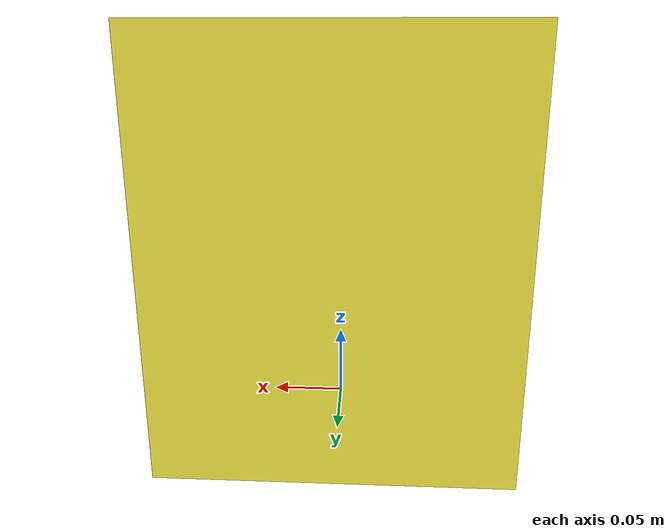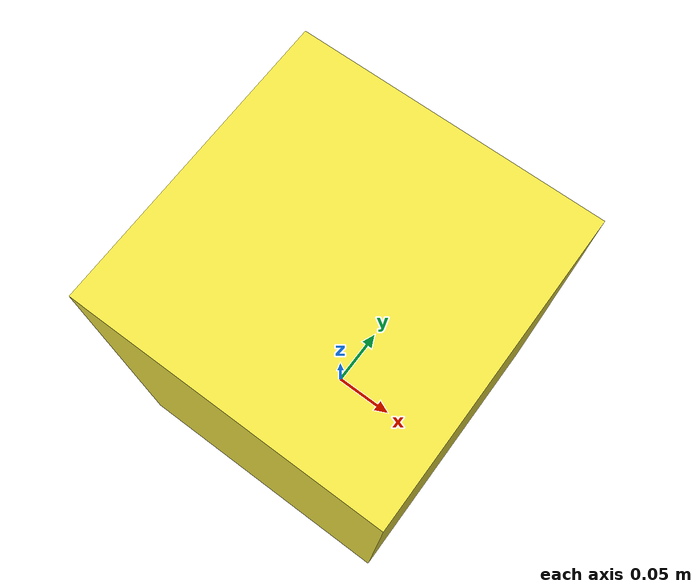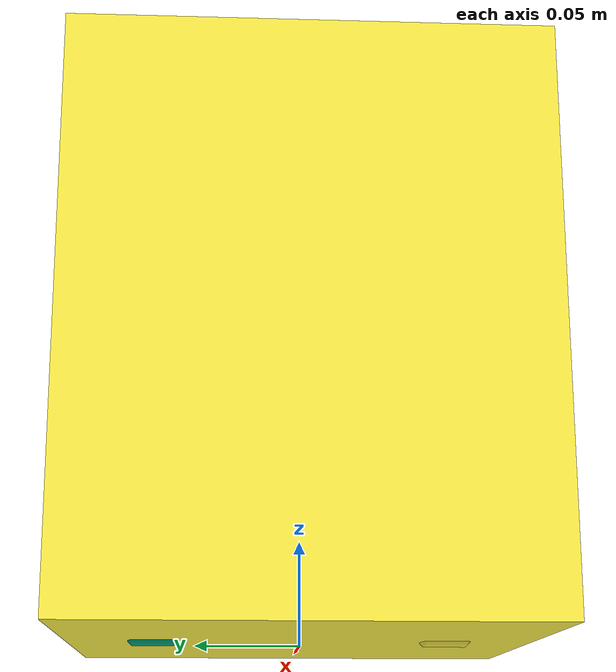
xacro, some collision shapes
<?xml version="1.0"?>
<robot name="cube_petit" xmlns:xacro="http://www.ros.org/wiki/xacro">
  <xacro:include filename="$(find cube_petit_description)/xacro/publish_pose.xacro"/>
  <xacro:include filename="$(find cube_petit_description)/xacro/brass_gazebo_battery.xacro"/>

  <link name="base_link"/>
  <joint name="body_joint" type="fixed">
    <parent link="base_link"/>
    <child link="body_link"/>
    <origin rpy="0 0 0" xyz="0 0 0"/>
  </joint>

  <link name="base_link_reverse"/>
  <joint name="base_link_reverse_joint" type="fixed">
    <parent link="base_link"/>
    <child link="base_link_reverse"/>
    <origin rpy="0 0 3.1415926" xyz="0 0 0"/>
  </joint>

  <link name="respeaker_base"/>
  <joint name="respeaker_joint" type="fixed">
    <parent link="base_link"/>
    <child link="respeaker_base"/>
    <origin rpy="0 0 0" xyz="0 0 0.28"/>
  </joint>

  <link name="body_link">
    <visual>
      <origin rpy="0 0 0" xyz="0 0 0"/>
      <geometry>
        <mesh
          filename="package://cube_petit_description/meshes/cube_petit/body/2/cube_petit_v2_body.obj"/>
      </geometry>
    </visual>
    <collision>
      <origin rpy="0 0 0" xyz="0 0 0.13725"/>
      <geometry>
        <box size="0.221 0.2225 0.2705"/>
      </geometry>
    </collision>
    <inertial>
      <origin rpy="0 0 0" xyz="0.00440023 0.00053314 0.15283194"/>
      <mass value="1.98239086"/>
      <inertia
        ixx="0.02351680"
        ixy="0.00001868" iyy="0.02505713"
        ixz="-0.00012952" iyz="-0.00004728" izz="0.02060399"/>
    </inertial>
  </link>
  <gazebo reference="body_link">
    <selfCollide>false</selfCollide>
    <maxContacts>4</maxContacts>
    <mu1 value="0.0"/>
    <kp value="150000"/>
    <kd value="0"/>
  </gazebo>

  <link name="connector_link"/>
  <joint name="connector_joint" type="fixed">
    <parent link="base_link"/>
    <child link="connector_link"/>
    <origin rpy="0 0 3.14" xyz="-0.11 0 0.025"/>
  </joint>

  <xacro:include filename="$(find cube_petit_description)/urdf/sensors/lidar.xacro" />

  <!-- rear camera -->
  <xacro:include filename="$(find cube_petit_description)/urdf/sensors/camera.xacro" />

  <xacro:include filename="$(find cube_petit_description)/urdf/sensors/depth.xacro" />

  <xacro:include filename="$(find cube_petit_description)/urdf/wheels/tamiya_wheels.xacro"/>

  <xacro:brass_gazebo_battery_plugin parent_link="base_link" voltage="15.12" capacity_ah="2.0"
    charge_current="100.0" discharge_current="20.0"/>

  <xacro:publish_pose_plugin link_name="base_link"
    topic_out="/gazebo/docking_station_simulation/robot_pose" update_rate="30"/>

  <gazebo>
    <plugin name="gazebo_ros_control" filename="libgazebo_ros_control.so">
      <robotNamespace>/cube_petit</robotNamespace>
      <legacyModeNS>true</legacyModeNS>
    </plugin>
  </gazebo>

  <gazebo>
    <plugin name="base_link_pose_publisher_plugin" filename="libgazebo_ros_p3d.so">
      <frameName>world</frameName>
      <bodyName>base_link</bodyName>
      <topicName>gazebo/robot_pose</topicName>
      <updateRate>10</updateRate>
    </plugin>
  </gazebo>

</robot>

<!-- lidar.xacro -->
<robot xmlns:xacro="http://ros.org/wiki/xacro">
  <joint name="laser_joint" type="fixed">
    <parent link="body_link"/>
    <child link="pacecat_link"/>
    <origin rpy="0 0 0" xyz="0.0 0 0.23975"/>
  </joint>
  <link name="pacecat_link">
    <inertial>
      <origin rpy="0 0 0" xyz="0.00000000 0.00000000 0.00208424"/>
      <mass value="0.11166745"/>
      <inertia
        ixx="0.004391"
        ixy="0.000000" iyy="0.004391"
        ixz="0.000000" iyz="0.000000" izz="0.004277"/>
    </inertial>
    <visual>
      <origin rpy="0 0 0" xyz="0 0 0"/>
      <geometry>
        <cylinder length="0.0315" radius="0.025"/>
      </geometry>
      <material name="red"/>
    </visual>
    <collision>
      <origin rpy="0 0 0" xyz="0 0 0"/>
      <geometry>
        <cylinder length="0.0315" radius="0.025"/>
      </geometry>
    </collision>
  </link>
  <gazebo reference="pacecat_link">
    <mu1 value="0.5"/>
    <kp value="50000"/>
    <kd value="0"/>
    <sensor type="gpu_ray" name="pacecat">
      <pose>0 0 0 0 0 0</pose>
      <visualize>false</visualize>
      <update_rate>10</update_rate>
      <ray>
        <scan>
          <horizontal>
            <samples>400</samples>
            <resolution>1</resolution>
            <min_angle>${radians(-180)}</min_angle>
            <max_angle>${radians( 180)}</max_angle>
          </horizontal>
        </scan>
        <range>
          <min>0.16</min>
          <max>20.0</max>
          <resolution>0.01</resolution>
        </range>
        <noise>
          <type>gaussian</type>
          <mean>0.0</mean>
          <stddev>0.01</stddev>
        </noise>
      </ray>
      <plugin name="gazebo_ros_lidar_controller" filename="libgazebo_ros_gpu_laser.so">
        <topicName>/pacecat/scan</topicName>
        <frameName>pacecat_link</frameName>
      </plugin>
    </sensor>
  </gazebo>
</robot>

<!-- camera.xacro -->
<robot xmlns:xacro="http://ros.org/wiki/xacro" name="cube_petit">
  <!-- camera joint -->
  <joint name="rear_camera_joint" type="fixed">
    <parent link="body_link"/>
    <child link="rear_camera_link"/>
    <origin rpy="0 0.0 3.1415926" xyz="-0.10137 0.0 0.18306"/>
  </joint>
  <!-- camera link -->
  <link name="rear_camera_link">
    <inertial>
      <origin rpy="0 0 0" xyz="0.00000000 0.00000000 0.0000000"/>
      <mass value="0.11166745"/>
      <inertia ixx="0.004391" ixy="0.000000" iyy="0.004391" ixz="0.000000" iyz="0.000000" izz="0.004277"/>
    </inertial>
    <visual>
      <origin rpy="0 0 0" xyz="0 0 0"/>
      <geometry>
        <cylinder length="0.001" radius="0.001"/>
      </geometry>
      <material name="blue"/>
    </visual>
    <collision>
      <origin rpy="0 0 0" xyz="0 0 0"/>
      <geometry>
        <cylinder length="0.001" radius="0.001"/>
      </geometry>
    </collision>
  </link>
  <!-- camera optical joint -->
  <joint name="rear_camera_optical_joint" type="fixed">
    <parent link="rear_camera_link"/>
    <child link="rear_camera_optical_link"/>
    <origin rpy="-1.57 0 -1.57" xyz="0.0 0.0 0.0"/>
  </joint>
  <!-- camera optical link -->
  <link name="rear_camera_optical_link">
    <inertial>
      <origin rpy="0 0 0" xyz="0.00000000 0.00000000 0.0000000"/>
      <mass value="0.11166745"/>
      <inertia ixx="0.004391" ixy="0.000000" iyy="0.004391" ixz="0.000000" iyz="0.000000" izz="0.004277"/>
    </inertial>
    <visual>
      <origin rpy="0 0 0" xyz="0 0 0"/>
      <geometry>
        <cylinder length="0.001" radius="0.001"/>
      </geometry>
      <material name="blue"/>
    </visual>
    <collision>
      <origin rpy="0 0 0" xyz="0 0 0"/>
      <geometry>
        <cylinder length="0.001" radius="0.001"/>
      </geometry>
    </collision>
  </link>
  <gazebo reference="rear_camera_link">
    <sensor type="camera" name="rear_camera">
      <update_rate>30.0</update_rate>
      <camera name="head">
        <horizontal_fov>0.8243246</horizontal_fov>
        <image>
          <width>640</width>
          <height>480</height>
          <format>R8G8B8</format>
        </image>
        <clip>
          <near>0.02</near>
          <far>10</far>
        </clip>
        <noise>
          <type>gaussian</type>
          <!-- Noise is sampled independently per pixel on each frame.
               That pixel's noise value is added to each of its color
               channels, which at that point lie in the range [0,1]. -->
          <mean>0.0</mean>
          <stddev>0.007</stddev>
        </noise>
      </camera>
      <plugin name="camera_controller" filename="libgazebo_ros_camera.so">
        <alwaysOn>true</alwaysOn>
        <updateRate>0.0</updateRate>
        <cameraName>rear_camera/rear_camera</cameraName>
        <imageTopicName>image_raw</imageTopicName>
        <cameraInfoTopicName>camera_info</cameraInfoTopicName>
        <frameName>rear_camera_optical_link</frameName>
        <hackBaseline>0.0</hackBaseline>
        <distortionK1>0.0</distortionK1>
        <distortionK2>0.0</distortionK2>
        <distortionK3>0.0</distortionK3>
        <distortionT1>0.0</distortionT1>
        <distortionT2>0.0</distortionT2>
      </plugin>
    </sensor>
  </gazebo>

</robot>

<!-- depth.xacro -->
<robot xmlns:xacro="http://ros.org/wiki/xacro">
  <joint name="depth_joint" type="fixed">
    <parent link="body_link"/>
    <child link="camera_link"/>
    <origin rpy="0 0.0034 0" xyz="0.10137 -0.006 0.097793"/>
  </joint>
  <link name="camera_link">
    <inertial>
      <origin rpy="0 0 0" xyz="0.00000000 0.00000000 0.0000000"/>
      <mass value="0.11166745"/>
      <inertia ixx="0.004391" ixy="0.000000" iyy="0.004391" ixz="0.000000" iyz="0.000000" izz="0.004277"/>
    </inertial>
    <visual>
      <origin rpy="0 0 0" xyz="0 0 0"/>
      <geometry>
        <cylinder length="0.001" radius="0.001"/>
      </geometry>
      <material name="red"/>
    </visual>
    <collision>
      <origin rpy="0 0 0" xyz="0 0 0"/>
      <geometry>
        <cylinder length="0.001" radius="0.001"/>
      </geometry>
    </collision>
  </link>
  <joint name="depth_optical_joint" type="fixed">
    <parent link="camera_link"/>
    <child link="camera_optical_link"/>
    <origin rpy="-1.57 0 -1.57" xyz="0.0 0.0 0.0"/>
  </joint>
  <link name="camera_optical_link">
    <inertial>
      <origin rpy="0 0 0" xyz="0.00000000 0.00000000 0.0000000"/>
      <mass value="0.11166745"/>
      <inertia ixx="0.004391" ixy="0.000000" iyy="0.004391" ixz="0.000000" iyz="0.000000" izz="0.004277"/>
    </inertial>
    <visual>
      <origin rpy="0 0 0" xyz="0 0 0"/>
      <geometry>
        <cylinder length="0.001" radius="0.001"/>
      </geometry>
      <material name="red"/>
    </visual>
    <collision>
      <origin rpy="0 0 0" xyz="0 0 0"/>
      <geometry>
        <cylinder length="0.001" radius="0.001"/>
      </geometry>
    </collision>
  </link>
  <gazebo reference="camera_link">
    <plugin name="gz::sim::systems::Sensors" filename="gz-sim-sensors-system"/>
    <mu1 value="0.5"/>
    <kp value="50000"/>
    <kd value="0"/>
    <sensor type="depth" name="depth_camera">
      <always_on>true</always_on>
      <update_rate>4.0</update_rate>
      <topic>camera/image_depth_rect</topic>
      <gz_frame_id>camera_optical_link</gz_frame_id>
      <camera>
        <camera_info_topic>camera/camera_info</camera_info_topic>
        <horizontal_fov>${60.0*3.1415926/180.0}</horizontal_fov>
        <image>
          <format>R8G8B8</format>
          <width>640</width>
          <height>480</height>
        </image>
        <clip>
          <near>0.2</near>
          <far>1.5</far>
        </clip>
      </camera>
    </sensor>
  </gazebo>
  <gazebo reference="camera_link">
    <plugin name="gz::sim::systems::Sensors" filename="gz-sim-sensors-system"/>
    <mu1 value="0.5"/>
    <kp value="50000"/>
    <kd value="0"/>
    <sensor type="camera" name="rgb_camera">
      <always_on>true</always_on>
      <update_rate>4.0</update_rate>
      <topic>camera/image_color</topic>
      <gz_frame_id>camera_optical_link</gz_frame_id>
      <camera>
        <camera_info_topic>camera/camera_info</camera_info_topic>
        <horizontal_fov>${60.0*3.1415926/180.0}</horizontal_fov>
        <image>
          <format>R8G8B8</format>
          <width>640</width>
          <height>480</height>
        </image>
        <clip>
          <near>0.2</near>
          <far>1.5</far>
        </clip>
      </camera>
    </sensor>
  </gazebo>

</robot>

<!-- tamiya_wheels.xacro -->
<robot xmlns:xacro="http://ros.org/wiki/xacro" name="cube_petit">
  <joint name="left_wheel_joint" type="continuous">
    <origin rpy="0 0 0" xyz="-0.000985 0.070150 0.0325"/>
    <parent link="body_link"/>
    <child link="left_wheel_link"/>
    <axis xyz="0 1 0"/>
  </joint>
  <transmission name="left_wheel_trans" type="SimpleTransmission">
    <type>transmission_interface/SimpleTransmission</type>
    <actuator name="left_wheel_motor">
      <mechanicalReduction>1</mechanicalReduction>
    </actuator>
    <joint name="left_wheel_joint">
      <hardwareInterface>hardware_interface/VelocityJointInterface</hardwareInterface>
    </joint>
  </transmission>
  <link name="left_wheel_link">
    <inertial>
      <origin rpy="0 0 0" xyz="-0.00000147 0.00093592 -0.00000239"/>
      <mass value="0.2986774"/>
      <inertia ixx="0.0001147" ixy="0.00000000" iyy="0.0002130" ixz="0.00000000" iyz="0.0000001" izz="0.0001148"/>
    </inertial>
    <visual>
      <origin rpy="-1.57079632679 0 3.1415926" xyz="0 0 0"/>
      <geometry>
        <mesh filename="$(find cube_petit_description)/meshes/cube_petit/wheels/tamiya_wheel.obj"/>
      </geometry>
    </visual>
    <collision>
      <origin rpy="1.57079632679 0 3.1415926" xyz="0 0 0"/>
      <geometry>
        <cylinder length="0.002" radius="0.0325"/>
      </geometry>
    </collision>
  </link>
  <gazebo reference="left_wheel_link">
    <selfCollide>false</selfCollide>
    <maxContacts>2</maxContacts>
    <minDepth>0</minDepth>
    <mu1 value="2.5"/>
    <kp value="50000"/>
    <kd value="0"/>
  </gazebo>

  <joint name="right_wheel_joint" type="continuous">
    <origin rpy="0 0 0" xyz="-0.000985 -0.070150 0.0325"/>
    <parent link="body_link"/>
    <child link="right_wheel_link"/>
    <axis xyz="0 1 0"/>
  </joint>
  <transmission name="right_wheel_trans" type="SimpleTransmission">
    <type>transmission_interface/SimpleTransmission</type>
    <actuator name="right_wheel_motor">
      <mechanicalReduction>1</mechanicalReduction>
    </actuator>
    <joint name="right_wheel_joint">
      <hardwareInterface>hardware_interface/VelocityJointInterface</hardwareInterface>
    </joint>
  </transmission>
  <link name="right_wheel_link">
    <inertial>
      <origin rpy="0 0 0" xyz="-0.00000147 0.00093592 -0.00000239"/>
      <mass value="0.2986774"/>
      <inertia ixx="0.0001147" ixy="0.00000000" iyy="0.0002130" ixz="0.00000000" iyz="0.0000001" izz="0.0001148"/>
    </inertial>
    <visual>
      <origin rpy="1.57079632679 0 3.1415926" xyz="0 0 0"/>
      <geometry>
        <mesh filename="$(find cube_petit_description)/meshes/cube_petit/wheels/tamiya_wheel.obj"/>
      </geometry>
    </visual>
    <collision>
      <origin rpy="1.57079632679 0 3.1415926" xyz="0 0 0"/>
      <geometry>
        <cylinder length="0.002" radius="0.0325"/>
      </geometry>
    </collision>
  </link>
  <gazebo reference="right_wheel_link">
    <selfCollide>false</selfCollide>
    <maxContacts>2</maxContacts>
    <minDepth>0</minDepth>
    <mu1 value="2.5"/>
    <kp value="50000"/>
    <kd value="0"/>
  </gazebo>

  <ros2_control name="left_wheel_motor" type="actuator">
    <hardware>
      <plugin>hardware_interface/VelocityJointInterface</plugin>
    </hardware>
    <joint name="left_wheel_joint">
      <command_interface name="velocity">
        <param name="min">-6</param>
        <param name="max">6</param>
      </command_interface>
      <state_interface name="position"/>
      <state_interface name="velocity"/>
    </joint>
  </ros2_control>
  <ros2_control name="right_wheel_motor" type="actuator">
    <hardware>
      <plugin>hardware_interface/VelocityJointInterface</plugin>
    </hardware>
    <joint name="right_wheel_joint">
      <command_interface name="velocity">
        <param name="min">-6</param>
        <param name="max">6</param>
      </command_interface>
      <state_interface name="position"/>
      <state_interface name="velocity"/>
    </joint>
  </ros2_control>

</robot>
